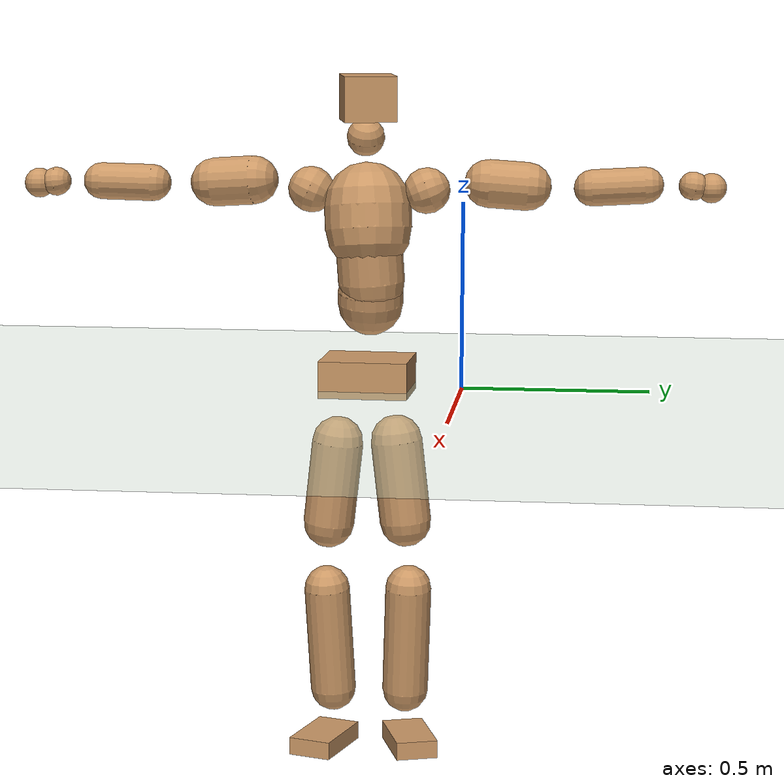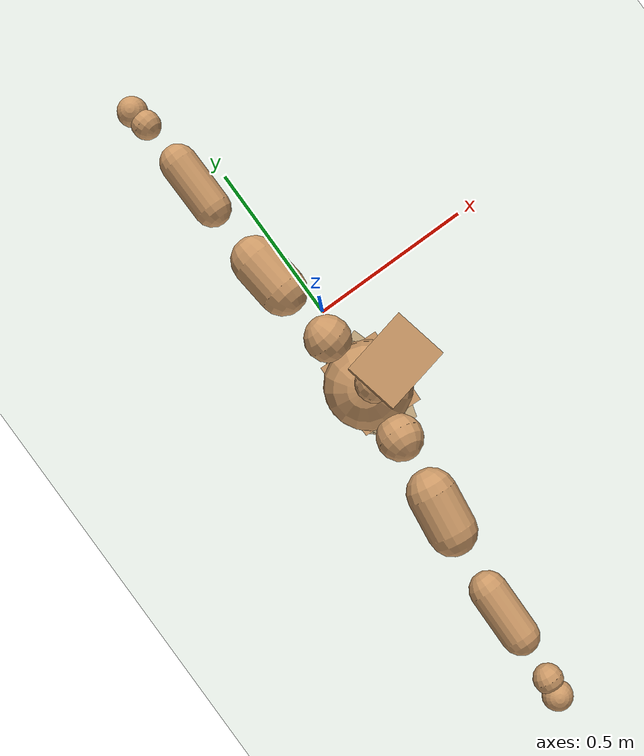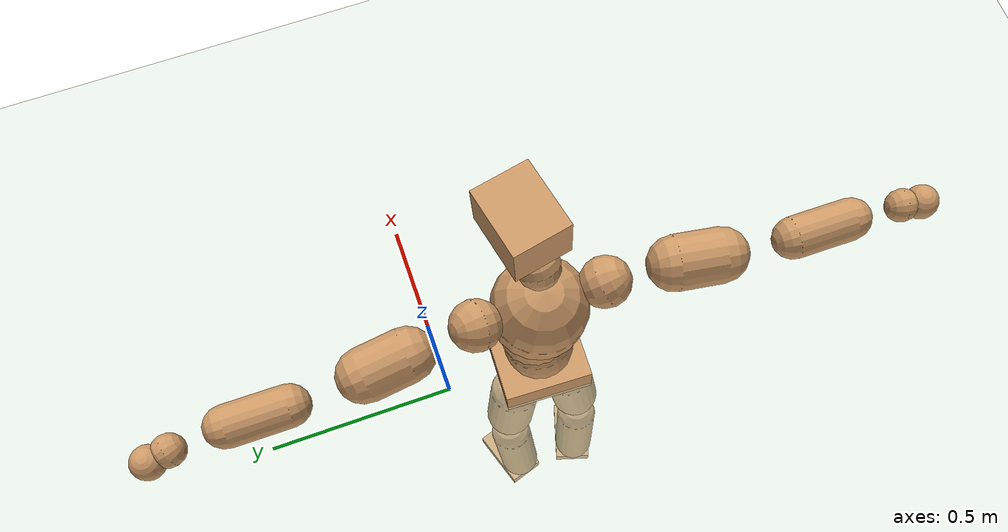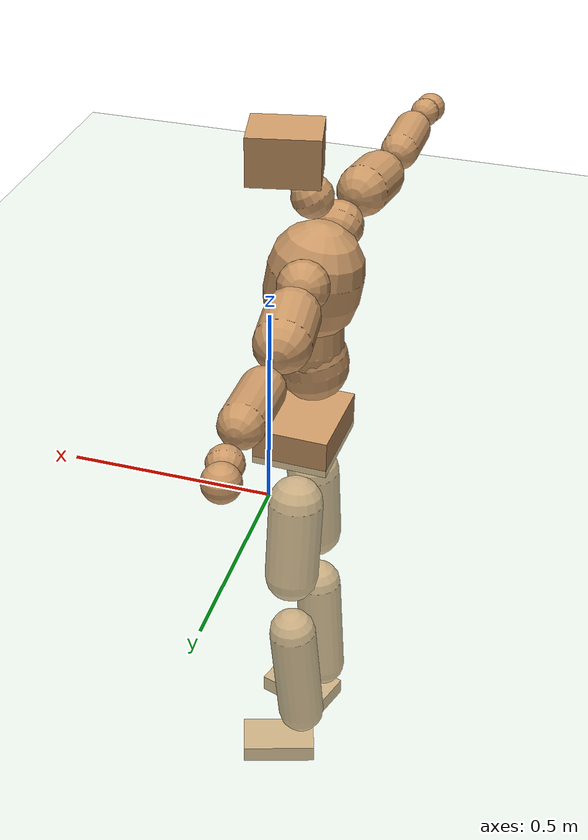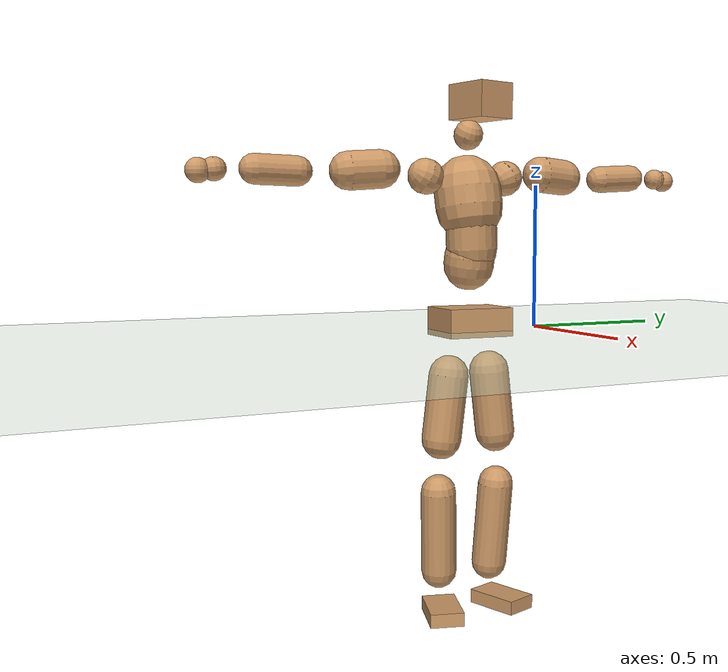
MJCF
<mujoco model="humanoid">
  <compiler coordinate="local" angle="radian"/>
  <default>
    <joint damping="0.0" armature="0.01" stiffness="0.0" limited="true"/>
    <geom conaffinity="1" condim="3" contype="7" margin="0.001" rgba="0.8 0.6 .4 1"/>
  </default>
  <asset>
    <texture type="skybox" builtin="gradient" rgb1=".4 .5 .6" rgb2="0 0 0" width="100" height="100"/>
    <texture builtin="flat" height="1278" mark="cross" markrgb="1 1 1" name="texgeom" random="0.01" rgb1="0.8 0.6 0.4" rgb2="0.8 0.6 0.4" type="cube" width="127"/>
    <texture builtin="checker" height="100" name="texplane" rgb1="0 0 0" rgb2="0.8 0.8 0.8" type="2d" width="100"/>
    <material name="MatPlane" reflectance="0.5" shininess="1" specular="1" texrepeat="60 60" texture="texplane"/>
    <material name="geom" texture="texgeom" texuniform="true"/>
  </asset>
  <worldbody>
    <light cutoff="100" diffuse="1 1 1" dir="-0 0 -1.3" directional="true" exponent="1" pos="0 0 1.3" specular=".1 .1 .1"/>
    <geom conaffinity="1" condim="3" name="floor" pos="0 0 0" rgba="0.8 0.9 0.8 1" size="100 100 .2" type="plane" material="MatPlane"/>
    <body name="Pelvis" pos="0.0001 -0.2583 0.0364">
      <freejoint name="Pelvis"/>
      <geom type="box" contype="1" conaffinity="1" density="5359.374951" pos="-0.0132 0.0005 -0.0088" size="0.0961 0.1196 0.0497" quat="0.9998 0.0000 0.0000 -0.0190" name="Pelvis"/>
      <body name="L_Hip" pos="-0.0183 0.0682 -0.0886">
        <joint name="L_Hip_x" type="hinge" pos="0 0 0" axis="1 0 0" stiffness="1600" damping="160" armature="0.02" range="-180.0000 180.0000"/>
        <joint name="L_Hip_y" type="hinge" pos="0 0 0" axis="0 1 0" stiffness="1600" damping="160" armature="0.02" range="-180.0000 180.0000"/>
        <joint name="L_Hip_z" type="hinge" pos="0 0 0" axis="0 0 1" stiffness="1600" damping="160" armature="0.02" range="-180.0000 180.0000"/>
        <geom type="capsule" contype="1" conaffinity="1" density="2040.816327" size="0.0702" fromto="0.0004 0.0112 -0.0995 0.0014 0.0364 -0.3236" name="L_Hip"/>
        <body name="L_Knee" pos="0.0018 0.0476 -0.4232">
          <joint name="L_Knee_x" type="hinge" pos="0 0 0" axis="1 0 0" stiffness="1600" damping="160" armature="0.02" range="-180.0000 180.0000"/>
          <joint name="L_Knee_y" type="hinge" pos="0 0 0" axis="0 1 0" stiffness="1600" damping="160" armature="0.02" range="-180.0000 180.0000"/>
          <joint name="L_Knee_z" type="hinge" pos="0 0 0" axis="0 0 1" stiffness="1600" damping="160" armature="0.02" range="-180.0000 180.0000"/>
          <geom type="capsule" contype="1" conaffinity="1" density="1234.567901" size="0.063" fromto="-0.0082 -0.0034 -0.0925 -0.0349 -0.0143 -0.3911" name="L_Knee"/>
          <body name="L_Ankle" pos="-0.0431 -0.0177 -0.4837">
            <joint name="L_Ankle_x" type="hinge" pos="0 0 0" axis="1 0 0" stiffness="1600" damping="160" armature="0.02" range="-180.0000 180.0000"/>
            <joint name="L_Ankle_y" type="hinge" pos="0 0 0" axis="0 1 0" stiffness="1600" damping="160" armature="0.02" range="-180.0000 180.0000"/>
            <joint name="L_Ankle_z" type="hinge" pos="0 0 0" axis="0 0 1" stiffness="1600" damping="160" armature="0.02" range="-180.0000 180.0000"/>
            <geom type="box" contype="1" conaffinity="1" density="1000.000046" pos="0.0679 0.0219 -0.0339" size="0.0993 0.0568 0.0245" quat="0.9878 0.0000 0.0000 0.1555" name="L_Ankle"/>
            <body name="L_Toe" pos="0.1358 0.0438 -0.0677">
              <joint name="L_Toe_x" type="hinge" pos="0 0 0" axis="1 0 0" stiffness="1000" damping="100" armature="0.02" range="-180.0000 180.0000"/>
              <joint name="L_Toe_y" type="hinge" pos="0 0 0" axis="0 1 0" stiffness="1000" damping="100" armature="0.02" range="-180.0000 180.0000"/>
              <joint name="L_Toe_z" type="hinge" pos="0 0 0" axis="0 0 1" stiffness="1000" damping="100" armature="0.02" range="-180.0000 180.0000"/>
              <geom type="box" contype="1" conaffinity="1" density="8445367.77329" pos="0.0000 0.0000 0.0340" size="0.0011 0.0027 0.0012" quat="0.9871 0.0000 0.0000 0.1599" name="L_Toe"/>
            </body>
          </body>
        </body>
      </body>
      <body name="R_Hip" pos="-0.0151 -0.0703 -0.0961">
        <joint name="R_Hip_x" type="hinge" pos="0 0 0" axis="1 0 0" stiffness="1600" damping="160" armature="0.02" range="-180.0000 180.0000"/>
        <joint name="R_Hip_y" type="hinge" pos="0 0 0" axis="0 1 0" stiffness="1600" damping="160" armature="0.02" range="-180.0000 180.0000"/>
        <joint name="R_Hip_z" type="hinge" pos="0 0 0" axis="0 0 1" stiffness="1600" damping="160" armature="0.02" range="-180.0000 180.0000"/>
        <geom type="capsule" contype="1" conaffinity="1" density="2040.816327" size="0.0696" fromto="-0.0026 -0.0114 -0.0989 -0.0085 -0.0375 -0.3265" name="R_Hip"/>
        <body name="R_Knee" pos="-0.0111 -0.0488 -0.4254">
          <joint name="R_Knee_x" type="hinge" pos="0 0 0" axis="1 0 0" stiffness="1600" damping="160" armature="0.02" range="-180.0000 180.0000"/>
          <joint name="R_Knee_y" type="hinge" pos="0 0 0" axis="0 1 0" stiffness="1600" damping="160" armature="0.02" range="-180.0000 180.0000"/>
          <joint name="R_Knee_z" type="hinge" pos="0 0 0" axis="0 0 1" stiffness="1600" damping="160" armature="0.02" range="-180.0000 180.0000"/>
          <geom type="capsule" contype="1" conaffinity="1" density="1234.567901" size="0.0626" fromto="-0.0075 0.0042 -0.0922 -0.0313 0.0177 -0.3866" name="R_Knee"/>
          <body name="R_Ankle" pos="-0.0388 0.0219 -0.4788">
            <joint name="R_Ankle_x" type="hinge" pos="0 0 0" axis="1 0 0" stiffness="1600" damping="160" armature="0.02" range="-180.0000 180.0000"/>
            <joint name="R_Ankle_y" type="hinge" pos="0 0 0" axis="0 1 0" stiffness="1600" damping="160" armature="0.02" range="-180.0000 180.0000"/>
            <joint name="R_Ankle_z" type="hinge" pos="0 0 0" axis="0 0 1" stiffness="1600" damping="160" armature="0.02" range="-180.0000 180.0000"/>
            <geom type="box" contype="1" conaffinity="1" density="1000.00002" pos="0.0717 -0.0219 -0.0360" size="0.0995 0.0593 0.0242" quat="0.9890 0.0000 0.0000 -0.1478" name="R_Ankle"/>
            <body name="R_Toe" pos="0.1435 -0.0439 -0.0721">
              <joint name="R_Toe_x" type="hinge" pos="0 0 0" axis="1 0 0" stiffness="1000" damping="100" armature="0.02" range="-180.0000 180.0000"/>
              <joint name="R_Toe_y" type="hinge" pos="0 0 0" axis="0 1 0" stiffness="1000" damping="100" armature="0.02" range="-180.0000 180.0000"/>
              <joint name="R_Toe_z" type="hinge" pos="0 0 0" axis="0 0 1" stiffness="1000" damping="100" armature="0.02" range="-180.0000 180.0000"/>
              <geom type="box" contype="1" conaffinity="1" density="8098732.70096" pos="0.0000 0.0000 0.0371" size="0.0012 0.0028 0.0013" quat="0.9902 0.0000 0.0000 -0.1397" name="R_Toe"/>
            </body>
          </body>
        </body>
      </body>
      <body name="Torso" pos="-0.0458 0.0051 0.132">
        <joint name="Torso_x" type="hinge" pos="0 0 0" axis="1 0 0" stiffness="2000" damping="200" armature="0.02" range="-180.0000 180.0000"/>
        <joint name="Torso_y" type="hinge" pos="0 0 0" axis="0 1 0" stiffness="2000" damping="200" armature="0.02" range="-180.0000 180.0000"/>
        <joint name="Torso_z" type="hinge" pos="0 0 0" axis="0 0 1" stiffness="2000" damping="200" armature="0.02" range="-180.0000 180.0000"/>
        <geom type="capsule" contype="1" conaffinity="1" density="2040.816327" size="0.0887" fromto="0.0166 0.0022 0.0871 0.0107 0.0014 0.0559" name="Torso"/>
        <body name="Spine" pos="0.0273 0.0036 0.143">
          <joint name="Spine_x" type="hinge" pos="0 0 0" axis="1 0 0" stiffness="2000" damping="200" armature="0.02" range="-180.0000 180.0000"/>
          <joint name="Spine_y" type="hinge" pos="0 0 0" axis="0 1 0" stiffness="2000" damping="200" armature="0.02" range="-180.0000 180.0000"/>
          <joint name="Spine_z" type="hinge" pos="0 0 0" axis="0 0 1" stiffness="2000" damping="200" armature="0.02" range="-180.0000 180.0000"/>
          <geom type="capsule" contype="1" conaffinity="1" density="2040.816327" size="0.0895" fromto="0.0043 -0.0055 0.0892 -0.0015 0.0019 -0.0299" name="Spine"/>
          <body name="Chest" pos="0.0029 -0.0037 0.0592">
            <joint name="Chest_x" type="hinge" pos="0 0 0" axis="1 0 0" stiffness="2000" damping="200" armature="0.02" range="-180.0000 180.0000"/>
            <joint name="Chest_y" type="hinge" pos="0 0 0" axis="0 1 0" stiffness="2000" damping="200" armature="0.02" range="-180.0000 180.0000"/>
            <joint name="Chest_z" type="hinge" pos="0 0 0" axis="0 0 1" stiffness="2000" damping="200" armature="0.02" range="-180.0000 180.0000"/>
            <geom type="capsule" contype="1" conaffinity="1" density="2040.816327" size="0.117" fromto="-0.0176 -0.0062 0.1155 -0.0080 -0.0028 0.0525" name="Chest"/>
            <body name="Neck" pos="-0.0341 -0.0148 0.2464">
              <joint name="Neck_x" type="hinge" pos="0 0 0" axis="1 0 0" stiffness="1000" damping="100" armature="0.02" range="-180.0000 180.0000"/>
              <joint name="Neck_y" type="hinge" pos="0 0 0" axis="0 1 0" stiffness="1000" damping="100" armature="0.02" range="-180.0000 180.0000"/>
              <joint name="Neck_z" type="hinge" pos="0 0 0" axis="0 0 1" stiffness="1000" damping="100" armature="0.02" range="-180.0000 180.0000"/>
              <geom type="capsule" contype="1" conaffinity="1" density="1000" size="0.0505" fromto="0.0301 0.0056 0.0517 0.0311 0.0058 0.0535" name="Neck"/>
              <body name="Head" pos="0.0613 0.0114 0.1052">
                <joint name="Head_x" type="hinge" pos="0 0 0" axis="1 0 0" stiffness="1000" damping="100" armature="0.02" range="-180.0000 180.0000"/>
                <joint name="Head_y" type="hinge" pos="0 0 0" axis="0 1 0" stiffness="1000" damping="100" armature="0.02" range="-180.0000 180.0000"/>
                <joint name="Head_z" type="hinge" pos="0 0 0" axis="0 0 1" stiffness="1000" damping="100" armature="0.02" range="-180.0000 180.0000"/>
                <geom type="box" contype="1" conaffinity="1" density="2249.999988" pos="0.0316 0.0067 0.0536" size="0.086 0.0689 0.0593" quat="0.9946 0.0000 0.0000 0.1041" name="Head"/>
              </body>
            </body>
            <body name="L_Thorax" pos="-0.0184 0.0827 0.1295">
              <joint name="L_Thorax_x" type="hinge" pos="0 0 0" axis="1 0 0" stiffness="1000" damping="100" armature="0.02" range="-180.0000 180.0000"/>
              <joint name="L_Thorax_y" type="hinge" pos="0 0 0" axis="0 1 0" stiffness="1000" damping="100" armature="0.02" range="-180.0000 180.0000"/>
              <joint name="L_Thorax_z" type="hinge" pos="0 0 0" axis="0 0 1" stiffness="1000" damping="100" armature="0.02" range="-180.0000 180.0000"/>
              <geom type="capsule" contype="1" conaffinity="1" density="1000" size="0.0616" fromto="-0.0121 0.0684 0.0258 -0.0124 0.0702 0.0265" name="L_Thorax"/>
              <body name="L_Shoulder" pos="-0.0245 0.1386 0.0522">
                <joint name="L_Shoulder_x" type="hinge" pos="0 0 0" axis="1 0 0" stiffness="1000" damping="100" armature="0.02" range="-720.0000 720.0000"/>
                <joint name="L_Shoulder_y" type="hinge" pos="0 0 0" axis="0 1 0" stiffness="1000" damping="100" armature="0.02" range="-720.0000 720.0000"/>
                <joint name="L_Shoulder_z" type="hinge" pos="0 0 0" axis="0 0 1" stiffness="1000" damping="100" armature="0.02" range="-720.0000 720.0000"/>
                <geom type="capsule" contype="1" conaffinity="1" density="1000" size="0.0644" fromto="-0.0092 0.0936 -0.0072 -0.0195 0.1974 -0.0152" name="L_Shoulder"/>
                <body name="L_Elbow" pos="-0.0287 0.291 -0.0225">
                  <joint name="L_Elbow_x" type="hinge" pos="0 0 0" axis="1 0 0" stiffness="1000" damping="100" armature="0.02" range="-720.0000 720.0000"/>
                  <joint name="L_Elbow_y" type="hinge" pos="0 0 0" axis="0 1 0" stiffness="1000" damping="100" armature="0.02" range="-720.0000 720.0000"/>
                  <joint name="L_Elbow_z" type="hinge" pos="0 0 0" axis="0 0 1" stiffness="1000" damping="100" armature="0.02" range="-720.0000 720.0000"/>
                  <geom type="capsule" contype="1" conaffinity="1" density="1000" size="0.0489" fromto="-0.0011 0.0787 0.0045 -0.0030 0.2195 0.0127" name="L_Elbow"/>
                  <body name="L_Wrist" pos="-0.0041 0.2983 0.0172">
                    <joint name="L_Wrist_x" type="hinge" pos="0 0 0" axis="1 0 0" stiffness="600" damping="60" armature="0.02" range="-180.0000 180.0000"/>
                    <joint name="L_Wrist_y" type="hinge" pos="0 0 0" axis="0 1 0" stiffness="600" damping="60" armature="0.02" range="-180.0000 180.0000"/>
                    <joint name="L_Wrist_z" type="hinge" pos="0 0 0" axis="0 0 1" stiffness="600" damping="60" armature="0.02" range="-180.0000 180.0000"/>
                    <geom type="capsule" contype="1" conaffinity="1" density="1000" size="0.0381" fromto="-0.0085 0.0473 -0.0059 -0.0089 0.0492 -0.0062" name="L_Wrist"/>
                    <body name="L_Hand" pos="-0.0174 0.0965 -0.0121">
                      <joint name="L_Hand_x" type="hinge" pos="0 0 0" axis="1 0 0" stiffness="600" damping="60" armature="0.02" range="-180.0000 180.0000"/>
                      <joint name="L_Hand_y" type="hinge" pos="0 0 0" axis="0 1 0" stiffness="600" damping="60" armature="0.02" range="-180.0000 180.0000"/>
                      <joint name="L_Hand_z" type="hinge" pos="0 0 0" axis="0 0 1" stiffness="600" damping="60" armature="0.02" range="-180.0000 180.0000"/>
                      <geom type="sphere" contype="1" conaffinity="1" density="1000" size="0.0397" pos="0.0000 0.0000 0.0000" name="L_Hand"/>
                    </body>
                  </body>
                </body>
              </body>
            </body>
            <body name="R_Thorax" pos="-0.0244 -0.095 0.1281">
              <joint name="R_Thorax_x" type="hinge" pos="0 0 0" axis="1 0 0" stiffness="1000" damping="100" armature="0.02" range="-180.0000 180.0000"/>
              <joint name="R_Thorax_y" type="hinge" pos="0 0 0" axis="0 1 0" stiffness="1000" damping="100" armature="0.02" range="-180.0000 180.0000"/>
              <joint name="R_Thorax_z" type="hinge" pos="0 0 0" axis="0 0 1" stiffness="1000" damping="100" armature="0.02" range="-180.0000 180.0000"/>
              <geom type="capsule" contype="1" conaffinity="1" density="1000" size="0.0617" fromto="-0.0056 -0.0637 0.0278 -0.0057 -0.0655 0.0286" name="R_Thorax"/>
              <body name="R_Shoulder" pos="-0.0113 -0.1291 0.0564">
                <joint name="R_Shoulder_x" type="hinge" pos="0 0 0" axis="1 0 0" stiffness="1000" damping="100" armature="0.02" range="-720.0000 720.0000"/>
                <joint name="R_Shoulder_y" type="hinge" pos="0 0 0" axis="0 1 0" stiffness="1000" damping="100" armature="0.02" range="-720.0000 720.0000"/>
                <joint name="R_Shoulder_z" type="hinge" pos="0 0 0" axis="0 0 1" stiffness="1000" damping="100" armature="0.02" range="-720.0000 720.0000"/>
                <geom type="capsule" contype="1" conaffinity="1" density="1000" size="0.0657" fromto="-0.0126 -0.0946 -0.0067 -0.0271 -0.2042 -0.0145" name="R_Shoulder"/>
                <body name="R_Elbow" pos="-0.0397 -0.2988 -0.0212">
                  <joint name="R_Elbow_x" type="hinge" pos="0 0 0" axis="1 0 0" stiffness="1000" damping="100" armature="0.02" range="-720.0000 720.0000"/>
                  <joint name="R_Elbow_y" type="hinge" pos="0 0 0" axis="0 1 0" stiffness="1000" damping="100" armature="0.02" range="-720.0000 720.0000"/>
                  <joint name="R_Elbow_z" type="hinge" pos="0 0 0" axis="0 0 1" stiffness="1000" damping="100" armature="0.02" range="-720.0000 720.0000"/>
                  <geom type="capsule" contype="1" conaffinity="1" density="1000" size="0.0499" fromto="-0.0014 -0.0799 0.0018 -0.0039 -0.2219 0.0051" name="R_Elbow"/>
                  <body name="R_Wrist" pos="-0.0053 -0.3018 0.007">
                    <joint name="R_Wrist_x" type="hinge" pos="0 0 0" axis="1 0 0" stiffness="600" damping="60" armature="0.02" range="-180.0000 180.0000"/>
                    <joint name="R_Wrist_y" type="hinge" pos="0 0 0" axis="0 1 0" stiffness="600" damping="60" armature="0.02" range="-180.0000 180.0000"/>
                    <joint name="R_Wrist_z" type="hinge" pos="0 0 0" axis="0 0 1" stiffness="600" damping="60" armature="0.02" range="-180.0000 180.0000"/>
                    <geom type="capsule" contype="1" conaffinity="1" density="1000" size="0.0391" fromto="-0.0055 -0.0486 -0.0049 -0.0057 -0.0505 -0.0051" name="R_Wrist"/>
                    <body name="R_Hand" pos="-0.0112 -0.0991 -0.0099">
                      <joint name="R_Hand_x" type="hinge" pos="0 0 0" axis="1 0 0" stiffness="600" damping="60" armature="0.02" range="-180.0000 180.0000"/>
                      <joint name="R_Hand_y" type="hinge" pos="0 0 0" axis="0 1 0" stiffness="600" damping="60" armature="0.02" range="-180.0000 180.0000"/>
                      <joint name="R_Hand_z" type="hinge" pos="0 0 0" axis="0 0 1" stiffness="600" damping="60" armature="0.02" range="-180.0000 180.0000"/>
                      <geom type="sphere" contype="1" conaffinity="1" density="1000" size="0.0404" pos="0.0000 0.0000 0.0000" name="R_Hand"/>
                    </body>
                  </body>
                </body>
              </body>
            </body>
          </body>
        </body>
      </body>
    </body>
  </worldbody>
  <actuator>
    <motor name="L_Hip_x" joint="L_Hip_x" gear="500"/>
    <motor name="L_Hip_y" joint="L_Hip_y" gear="500"/>
    <motor name="L_Hip_z" joint="L_Hip_z" gear="500"/>
    <motor name="L_Knee_x" joint="L_Knee_x" gear="500"/>
    <motor name="L_Knee_y" joint="L_Knee_y" gear="500"/>
    <motor name="L_Knee_z" joint="L_Knee_z" gear="500"/>
    <motor name="L_Ankle_x" joint="L_Ankle_x" gear="500"/>
    <motor name="L_Ankle_y" joint="L_Ankle_y" gear="500"/>
    <motor name="L_Ankle_z" joint="L_Ankle_z" gear="500"/>
    <motor name="L_Toe_x" joint="L_Toe_x" gear="500"/>
    <motor name="L_Toe_y" joint="L_Toe_y" gear="500"/>
    <motor name="L_Toe_z" joint="L_Toe_z" gear="500"/>
    <motor name="R_Hip_x" joint="R_Hip_x" gear="500"/>
    <motor name="R_Hip_y" joint="R_Hip_y" gear="500"/>
    <motor name="R_Hip_z" joint="R_Hip_z" gear="500"/>
    <motor name="R_Knee_x" joint="R_Knee_x" gear="500"/>
    <motor name="R_Knee_y" joint="R_Knee_y" gear="500"/>
    <motor name="R_Knee_z" joint="R_Knee_z" gear="500"/>
    <motor name="R_Ankle_x" joint="R_Ankle_x" gear="500"/>
    <motor name="R_Ankle_y" joint="R_Ankle_y" gear="500"/>
    <motor name="R_Ankle_z" joint="R_Ankle_z" gear="500"/>
    <motor name="R_Toe_x" joint="R_Toe_x" gear="500"/>
    <motor name="R_Toe_y" joint="R_Toe_y" gear="500"/>
    <motor name="R_Toe_z" joint="R_Toe_z" gear="500"/>
    <motor name="Torso_x" joint="Torso_x" gear="500"/>
    <motor name="Torso_y" joint="Torso_y" gear="500"/>
    <motor name="Torso_z" joint="Torso_z" gear="500"/>
    <motor name="Spine_x" joint="Spine_x" gear="500"/>
    <motor name="Spine_y" joint="Spine_y" gear="500"/>
    <motor name="Spine_z" joint="Spine_z" gear="500"/>
    <motor name="Chest_x" joint="Chest_x" gear="500"/>
    <motor name="Chest_y" joint="Chest_y" gear="500"/>
    <motor name="Chest_z" joint="Chest_z" gear="500"/>
    <motor name="Neck_x" joint="Neck_x" gear="500"/>
    <motor name="Neck_y" joint="Neck_y" gear="500"/>
    <motor name="Neck_z" joint="Neck_z" gear="500"/>
    <motor name="Head_x" joint="Head_x" gear="500"/>
    <motor name="Head_y" joint="Head_y" gear="500"/>
    <motor name="Head_z" joint="Head_z" gear="500"/>
    <motor name="L_Thorax_x" joint="L_Thorax_x" gear="500"/>
    <motor name="L_Thorax_y" joint="L_Thorax_y" gear="500"/>
    <motor name="L_Thorax_z" joint="L_Thorax_z" gear="500"/>
    <motor name="L_Shoulder_x" joint="L_Shoulder_x" gear="500"/>
    <motor name="L_Shoulder_y" joint="L_Shoulder_y" gear="500"/>
    <motor name="L_Shoulder_z" joint="L_Shoulder_z" gear="500"/>
    <motor name="L_Elbow_x" joint="L_Elbow_x" gear="500"/>
    <motor name="L_Elbow_y" joint="L_Elbow_y" gear="500"/>
    <motor name="L_Elbow_z" joint="L_Elbow_z" gear="500"/>
    <motor name="L_Wrist_x" joint="L_Wrist_x" gear="500"/>
    <motor name="L_Wrist_y" joint="L_Wrist_y" gear="500"/>
    <motor name="L_Wrist_z" joint="L_Wrist_z" gear="500"/>
    <motor name="L_Hand_x" joint="L_Hand_x" gear="500"/>
    <motor name="L_Hand_y" joint="L_Hand_y" gear="500"/>
    <motor name="L_Hand_z" joint="L_Hand_z" gear="500"/>
    <motor name="R_Thorax_x" joint="R_Thorax_x" gear="500"/>
    <motor name="R_Thorax_y" joint="R_Thorax_y" gear="500"/>
    <motor name="R_Thorax_z" joint="R_Thorax_z" gear="500"/>
    <motor name="R_Shoulder_x" joint="R_Shoulder_x" gear="500"/>
    <motor name="R_Shoulder_y" joint="R_Shoulder_y" gear="500"/>
    <motor name="R_Shoulder_z" joint="R_Shoulder_z" gear="500"/>
    <motor name="R_Elbow_x" joint="R_Elbow_x" gear="500"/>
    <motor name="R_Elbow_y" joint="R_Elbow_y" gear="500"/>
    <motor name="R_Elbow_z" joint="R_Elbow_z" gear="500"/>
    <motor name="R_Wrist_x" joint="R_Wrist_x" gear="500"/>
    <motor name="R_Wrist_y" joint="R_Wrist_y" gear="500"/>
    <motor name="R_Wrist_z" joint="R_Wrist_z" gear="500"/>
    <motor name="R_Hand_x" joint="R_Hand_x" gear="500"/>
    <motor name="R_Hand_y" joint="R_Hand_y" gear="500"/>
    <motor name="R_Hand_z" joint="R_Hand_z" gear="500"/>
  </actuator>
  <contact>
    <exclude body1="Torso" body2="Chest"/>
    <exclude body1="Head" body2="Chest"/>
    <exclude body1="R_Knee" body2="R_Toe"/>
    <exclude body1="R_Knee" body2="L_Ankle"/>
    <exclude body1="R_Knee" body2="L_Toe"/>
    <exclude body1="L_Knee" body2="L_Toe"/>
    <exclude body1="L_Knee" body2="R_Ankle"/>
    <exclude body1="L_Knee" body2="R_Toe"/>
    <exclude body1="L_Shoulder" body2="Chest"/>
    <exclude body1="R_Shoulder" body2="Chest"/>
  </contact>
  <sensor/>
  <size njmax="700" nconmax="700"/>
</mujoco>
